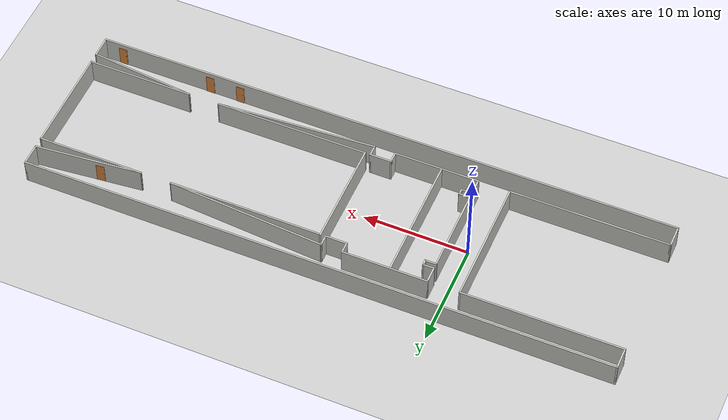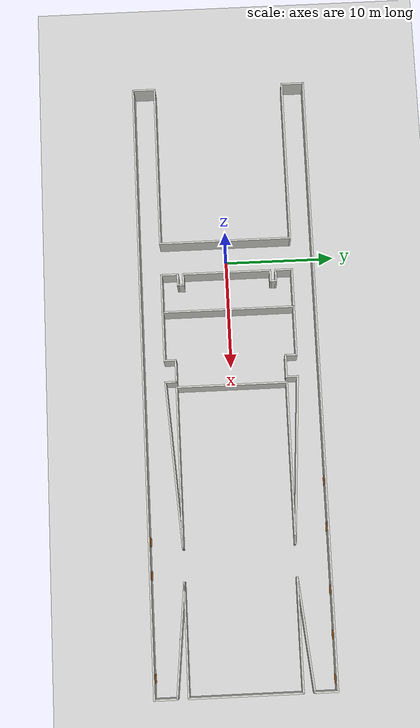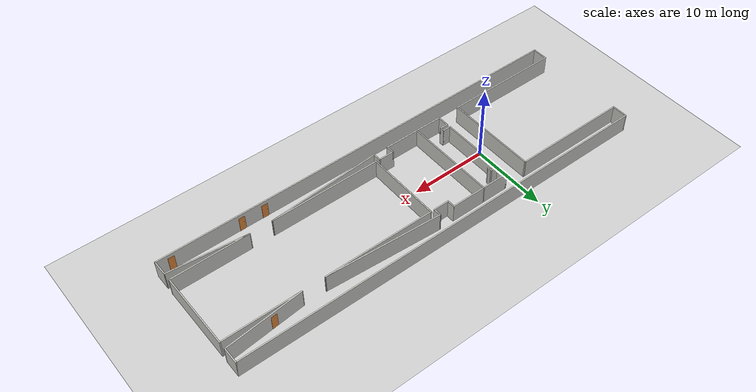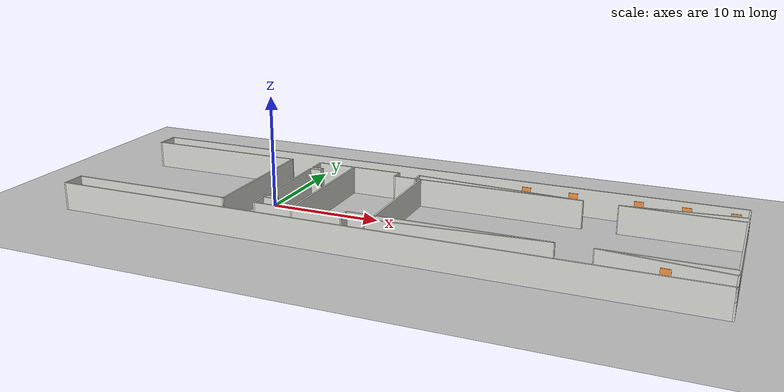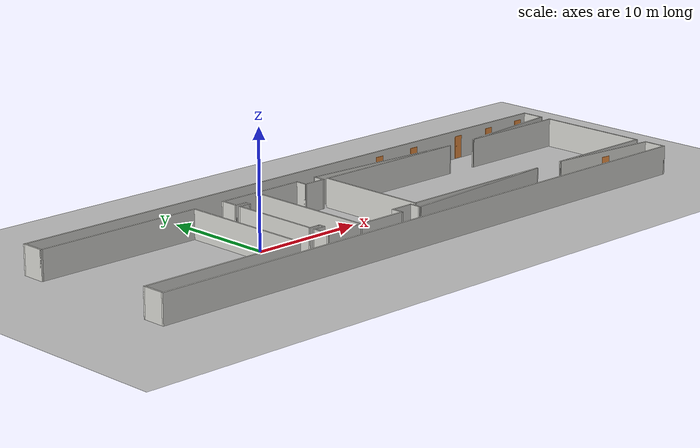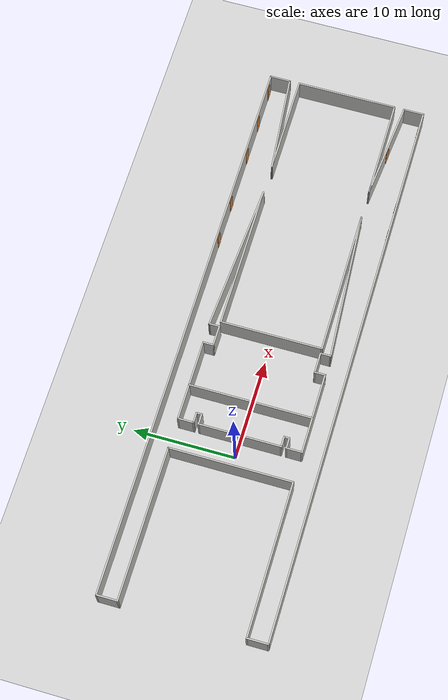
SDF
<sdf version="1.6">
 <world name="default">
  <model name="ground_plane">
   <static>1</static>
   <link name="link">
    <collision name="collision">
     <geometry><plane><normal>0 0 1</normal><size>100 100</size></plane></geometry>
     <surface>
      <contact><collide_bitmask>65535</collide_bitmask></contact>
      <friction><ode><mu>100</mu><mu2>50</mu2></ode></friction>
     </surface>
    </collision>
    <visual name="visual">
     <cast_shadows>0</cast_shadows>
     <geometry><plane><normal>0 0 1</normal><size>100 100</size></plane></geometry>
     <material>
      <script><uri>file://media/materials/scripts/gazebo.material</uri><name>Gazebo/Grey</name></script>
     </material>
    </visual>
   </link>
  </model>
  <model name="NURI_3rd">
   <pose>11.5035 0 0 0 -0 0</pose>
   <link name="Wall_0">
    <collision name="Wall_0_Collision">
     <geometry><box><size>56.15 0.15 2.5</size></box></geometry>
     <pose>0 0 1.25 0 -0 0</pose>
    </collision>
    <visual name="Wall_0_Visual">
     <pose>0 0 1.25 0 -0 0</pose>
     <geometry><box><size>56.15 0.15 2.5</size></box></geometry>
     <material>
      <script><uri>file://media/materials/scripts/gazebo.material</uri><name>Gazebo/CeilingTiled</name></script>
      <ambient>1 1 1 1</ambient>
     </material>
     <meta><layer>0</layer></meta>
    </visual>
    <pose>-0.003546 -8 0 0 -0 0</pose>
   </link>
   <link name="Wall_10">
    <collision name="Wall_10_Collision">
     <geometry><box><size>2.15 0.15 2.5</size></box></geometry>
     <pose>0 0 1.25 0 -0 0</pose>
    </collision>
    <visual name="Wall_10_Visual">
     <pose>0 0 1.25 0 -0 0</pose>
     <geometry><box><size>2.15 0.15 2.5</size></box></geometry>
     <material>
      <script><uri>file://media/materials/scripts/gazebo.material</uri><name>Gazebo/CeilingTiled</name></script>
      <ambient>1 1 1 1</ambient>
     </material>
     <meta><layer>0</layer></meta>
    </visual>
    <pose>-28.0035 7 0 0 -0 1.5708</pose>
   </link>
   <link name="Wall_12">
    <collision name="Wall_12_Collision">
     <geometry><box><size>56.15 0.15 2.5</size></box></geometry>
     <pose>0 0 1.25 0 -0 0</pose>
    </collision>
    <visual name="Wall_12_Visual">
     <pose>0 0 1.25 0 -0 0</pose>
     <geometry><box><size>56.15 0.15 2.5</size></box></geometry>
     <material>
      <script><uri>file://media/materials/scripts/gazebo.material</uri><name>Gazebo/CeilingTiled</name></script>
      <ambient>1 1 1 1</ambient>
     </material>
     <meta><layer>0</layer></meta>
    </visual>
    <pose>-0.003546 8 0 0 -0 0</pose>
   </link>
   <link name="Wall_14">
    <collision name="Wall_14_Collision">
     <geometry><box><size>8.15 0.15 2.5</size></box></geometry>
     <pose>0 0 1.25 0 -0 0</pose>
    </collision>
    <visual name="Wall_14_Visual">
     <pose>0 0 1.25 0 -0 0</pose>
     <geometry><box><size>8.15 0.15 2.5</size></box></geometry>
     <material>
      <script><uri>file://media/materials/scripts/gazebo.material</uri><name>Gazebo/CeilingTiled</name></script>
      <ambient>1 1 1 1</ambient>
     </material>
     <meta><layer>0</layer></meta>
    </visual>
    <pose>-6.00355 6 0 0 -0 0</pose>
   </link>
   <link name="Wall_16">
    <collision name="Wall_16_Collision">
     <geometry><box><size>1.65 0.15 2.5</size></box></geometry>
     <pose>0 0 1.25 0 -0 0</pose>
    </collision>
    <visual name="Wall_16_Visual">
     <pose>0 0 1.25 0 -0 0</pose>
     <geometry><box><size>1.65 0.15 2.5</size></box></geometry>
     <material>
      <script><uri>file://media/materials/scripts/gazebo.material</uri><name>Gazebo/CeilingTiled</name></script>
      <ambient>1 1 1 1</ambient>
     </material>
     <meta><layer>0</layer></meta>
    </visual>
    <pose>-10.0035 5.25 0 0 -0 -1.5708</pose>
   </link>
   <link name="Wall_18">
    <collision name="Wall_18_Collision">
     <geometry><box><size>1.15 0.15 2.5</size></box></geometry>
     <pose>0 0 1.25 0 -0 0</pose>
    </collision>
    <visual name="Wall_18_Visual">
     <pose>0 0 1.25 0 -0 0</pose>
     <geometry><box><size>1.15 0.15 2.5</size></box></geometry>
     <material>
      <script><uri>file://media/materials/scripts/gazebo.material</uri><name>Gazebo/CeilingTiled</name></script>
      <ambient>1 1 1 1</ambient>
     </material>
     <meta><layer>0</layer></meta>
    </visual>
    <pose>-9.50355 4.5 0 0 -0 0</pose>
   </link>
   <link name="Wall_2">
    <collision name="Wall_2_Collision">
     <geometry><box><size>2.15 0.15 2.5</size></box></geometry>
     <pose>0 0 1.25 0 -0 0</pose>
    </collision>
    <visual name="Wall_2_Visual">
     <pose>0 0 1.25 0 -0 0</pose>
     <geometry><box><size>2.15 0.15 2.5</size></box></geometry>
     <material>
      <script><uri>file://media/materials/scripts/gazebo.material</uri><name>Gazebo/CeilingTiled</name></script>
      <ambient>1 1 1 1</ambient>
     </material>
     <meta><layer>0</layer></meta>
    </visual>
    <pose>-28.0035 -7 0 0 -0 -1.5708</pose>
   </link>
   <link name="Wall_20">
    <collision name="Wall_20_Collision">
     <geometry><box><size>0.65 0.15 2.5</size></box></geometry>
     <pose>0 0 1.25 0 -0 0</pose>
    </collision>
    <visual name="Wall_20_Visual">
     <pose>0 0 1.25 0 -0 0</pose>
     <geometry><box><size>0.65 0.15 2.5</size></box></geometry>
     <material>
      <script><uri>file://media/materials/scripts/gazebo.material</uri><name>Gazebo/CeilingTiled</name></script>
      <ambient>1 1 1 1</ambient>
     </material>
     <meta><layer>0</layer></meta>
    </visual>
    <pose>-9.00355 4.25 0 0 -0 -1.5708</pose>
   </link>
   <link name="Wall_22">
    <collision name="Wall_22_Collision">
     <geometry><box><size>1.15 0.15 2.5</size></box></geometry>
     <pose>0 0 1.25 0 -0 0</pose>
    </collision>
    <visual name="Wall_22_Visual">
     <pose>0 0 1.25 0 -0 0</pose>
     <geometry><box><size>1.15 0.15 2.5</size></box></geometry>
     <material>
      <script><uri>file://media/materials/scripts/gazebo.material</uri><name>Gazebo/CeilingTiled</name></script>
      <ambient>1 1 1 1</ambient>
     </material>
     <meta><layer>0</layer></meta>
    </visual>
    <pose>-9.50355 4 0 0 -0 3.14159</pose>
   </link>
   <link name="Wall_24">
    <collision name="Wall_24_Collision">
     <geometry><box><size>8.15 0.15 2.5</size></box></geometry>
     <pose>0 0 1.25 0 -0 0</pose>
    </collision>
    <visual name="Wall_24_Visual">
     <pose>0 0 1.25 0 -0 0</pose>
     <geometry><box><size>8.15 0.15 2.5</size></box></geometry>
     <material>
      <script><uri>file://media/materials/scripts/gazebo.material</uri><name>Gazebo/CeilingTiled</name></script>
      <ambient>1 1 1 1</ambient>
     </material>
     <meta><layer>0</layer></meta>
    </visual>
    <pose>-10.0035 0 0 0 -0 -1.5708</pose>
   </link>
   <link name="Wall_26">
    <collision name="Wall_26_Collision">
     <geometry><box><size>1.15 0.15 2.5</size></box></geometry>
     <pose>0 0 1.25 0 -0 0</pose>
    </collision>
    <visual name="Wall_26_Visual">
     <pose>0 0 1.25 0 -0 0</pose>
     <geometry><box><size>1.15 0.15 2.5</size></box></geometry>
     <material>
      <script><uri>file://media/materials/scripts/gazebo.material</uri><name>Gazebo/CeilingTiled</name></script>
      <ambient>1 1 1 1</ambient>
     </material>
     <meta><layer>0</layer></meta>
    </visual>
    <pose>-9.50355 -4 0 0 -0 0</pose>
   </link>
   <link name="Wall_28">
    <collision name="Wall_28_Collision">
     <geometry><box><size>0.65 0.15 2.5</size></box></geometry>
     <pose>0 0 1.25 0 -0 0</pose>
    </collision>
    <visual name="Wall_28_Visual">
     <pose>0 0 1.25 0 -0 0</pose>
     <geometry><box><size>0.65 0.15 2.5</size></box></geometry>
     <material>
      <script><uri>file://media/materials/scripts/gazebo.material</uri><name>Gazebo/CeilingTiled</name></script>
      <ambient>1 1 1 1</ambient>
     </material>
     <meta><layer>0</layer></meta>
    </visual>
    <pose>-9.00355 -4.25 0 0 -0 -1.5708</pose>
   </link>
   <link name="Wall_30">
    <collision name="Wall_30_Collision">
     <geometry><box><size>1.15 0.15 2.5</size></box></geometry>
     <pose>0 0 1.25 0 -0 0</pose>
    </collision>
    <visual name="Wall_30_Visual">
     <pose>0 0 1.25 0 -0 0</pose>
     <geometry><box><size>1.15 0.15 2.5</size></box></geometry>
     <material>
      <script><uri>file://media/materials/scripts/gazebo.material</uri><name>Gazebo/CeilingTiled</name></script>
      <ambient>1 1 1 1</ambient>
     </material>
     <meta><layer>0</layer></meta>
    </visual>
    <pose>-9.50355 -4.5 0 0 -0 3.14159</pose>
   </link>
   <link name="Wall_32">
    <collision name="Wall_32_Collision">
     <geometry><box><size>1.65 0.15 2.5</size></box></geometry>
     <pose>0 0 1.25 0 -0 0</pose>
    </collision>
    <visual name="Wall_32_Visual">
     <pose>0 0 1.25 0 -0 0</pose>
     <geometry><box><size>1.65 0.15 2.5</size></box></geometry>
     <material>
      <script><uri>file://media/materials/scripts/gazebo.material</uri><name>Gazebo/CeilingTiled</name></script>
      <ambient>1 1 1 1</ambient>
     </material>
     <meta><layer>0</layer></meta>
    </visual>
    <pose>-10.0035 -5.25 0 0 -0 -1.5708</pose>
   </link>
   <link name="Wall_34">
    <collision name="Wall_34_Collision">
     <geometry><box><size>8.15 0.15 2.5</size></box></geometry>
     <pose>0 0 1.25 0 -0 0</pose>
    </collision>
    <visual name="Wall_34_Visual">
     <pose>0 0 1.25 0 -0 0</pose>
     <geometry><box><size>8.15 0.15 2.5</size></box></geometry>
     <material>
      <script><uri>file://media/materials/scripts/gazebo.material</uri><name>Gazebo/CeilingTiled</name></script>
      <ambient>1 1 1 1</ambient>
     </material>
     <meta><layer>0</layer></meta>
    </visual>
    <pose>-6.00355 -6 0 0 -0 0</pose>
   </link>
   <link name="Wall_36">
    <collision name="Wall_36_Collision">
     <geometry><box><size>1.15 0.15 2.5</size></box></geometry>
     <pose>0 0 1.25 0 -0 0</pose>
    </collision>
    <visual name="Wall_36_Visual">
     <pose>0 0 1.25 0 -0 0</pose>
     <geometry><box><size>1.15 0.15 2.5</size></box></geometry>
     <material>
      <script><uri>file://media/materials/scripts/gazebo.material</uri><name>Gazebo/CeilingTiled</name></script>
      <ambient>1 1 1 1</ambient>
     </material>
     <meta><layer>0</layer></meta>
    </visual>
    <pose>-2.00355 -5.5 0 0 -0 1.5708</pose>
   </link>
   <link name="Wall_38">
    <collision name="Wall_38_Collision">
     <geometry><box><size>2.15 0.15 2.5</size></box></geometry>
     <pose>0 0 1.25 0 -0 0</pose>
    </collision>
    <visual name="Wall_38_Visual">
     <pose>0 0 1.25 0 -0 0</pose>
     <geometry><box><size>2.15 0.15 2.5</size></box></geometry>
     <material>
      <script><uri>file://media/materials/scripts/gazebo.material</uri><name>Gazebo/CeilingTiled</name></script>
      <ambient>1 1 1 1</ambient>
     </material>
     <meta><layer>0</layer></meta>
    </visual>
    <pose>-1.00355 -5 0 0 -0 0</pose>
   </link>
   <link name="Wall_4">
    <collision name="Wall_4_Collision">
     <geometry><box><size>15.15 0.15 2.5</size></box></geometry>
     <pose>0 0 1.25 0 -0 0</pose>
    </collision>
    <visual name="Wall_4_Visual">
     <pose>0 0 1.25 0 -0 0</pose>
     <geometry><box><size>15.15 0.15 2.5</size></box></geometry>
     <material>
      <script><uri>file://media/materials/scripts/gazebo.material</uri><name>Gazebo/CeilingTiled</name></script>
      <ambient>1 1 1 1</ambient>
     </material>
     <meta><layer>0</layer></meta>
    </visual>
    <pose>-20.5035 -6 0 0 -0 0</pose>
   </link>
   <link name="Wall_40">
    <collision name="Wall_40_Collision">
     <geometry><box><size>1.15 0.15 2.5</size></box></geometry>
     <pose>0 0 1.25 0 -0 0</pose>
    </collision>
    <visual name="Wall_40_Visual">
     <pose>0 0 1.25 0 -0 0</pose>
     <geometry><box><size>1.15 0.15 2.5</size></box></geometry>
     <material>
      <script><uri>file://media/materials/scripts/gazebo.material</uri><name>Gazebo/CeilingTiled</name></script>
      <ambient>1 1 1 1</ambient>
     </material>
     <meta><layer>0</layer></meta>
    </visual>
    <pose>-0.003546 -5.5 0 0 -0 -1.5708</pose>
   </link>
   <link name="Wall_42">
    <collision name="Wall_42_Collision">
     <geometry><box><size>15.1833 0.15 2.5</size></box></geometry>
     <pose>0 0 1.25 0 -0 0</pose>
    </collision>
    <visual name="Wall_42_Visual">
     <pose>0 0 1.25 0 -0 0</pose>
     <geometry><box><size>15.1833 0.15 2.5</size></box></geometry>
     <material>
      <script><uri>file://media/materials/scripts/gazebo.material</uri><name>Gazebo/CeilingTiled</name></script>
      <ambient>1 1 1 1</ambient>
     </material>
     <meta><layer>0</layer></meta>
    </visual>
    <pose>7.49645 -5.5 0 0 -0 0.066568</pose>
   </link>
   <link name="Wall_44">
    <collision name="Wall_44_Collision">
     <geometry><box><size>14.65 0.15 2.5</size></box></geometry>
     <pose>0 0 1.25 0 -0 0</pose>
    </collision>
    <visual name="Wall_44_Visual">
     <pose>0 0 1.25 0 -0 0</pose>
     <geometry><box><size>14.65 0.15 2.5</size></box></geometry>
     <material>
      <script><uri>file://media/materials/scripts/gazebo.material</uri><name>Gazebo/CeilingTiled</name></script>
      <ambient>1 1 1 1</ambient>
     </material>
     <meta><layer>0</layer></meta>
    </visual>
    <pose>7.74645 -5 0 0 -0 3.14159</pose>
   </link>
   <link name="Wall_46">
    <collision name="Wall_46_Collision">
     <geometry><box><size>10.15 0.15 2.5</size></box></geometry>
     <pose>0 0 1.25 0 -0 0</pose>
    </collision>
    <visual name="Wall_46_Visual">
     <pose>0 0 1.25 0 -0 0</pose>
     <geometry><box><size>10.15 0.15 2.5</size></box></geometry>
     <material>
      <script><uri>file://media/materials/scripts/gazebo.material</uri><name>Gazebo/CeilingTiled</name></script>
      <ambient>1 1 1 1</ambient>
     </material>
     <meta><layer>0</layer></meta>
    </visual>
    <pose>0.496454 0 0 0 -0 1.5708</pose>
   </link>
   <link name="Wall_48">
    <collision name="Wall_48_Collision">
     <geometry><box><size>1.15 0.15 2.5</size></box></geometry>
     <pose>0 0 1.25 0 -0 0</pose>
    </collision>
    <visual name="Wall_48_Visual">
     <pose>0 0 1.25 0 -0 0</pose>
     <geometry><box><size>1.15 0.15 2.5</size></box></geometry>
     <material>
      <script><uri>file://media/materials/scripts/gazebo.material</uri><name>Gazebo/CeilingTiled</name></script>
      <ambient>1 1 1 1</ambient>
     </material>
     <meta><layer>0</layer></meta>
    </visual>
    <pose>-2.00355 5.5 0 0 -0 -1.5708</pose>
   </link>
   <link name="Wall_50">
    <collision name="Wall_50_Collision">
     <geometry><box><size>2.15 0.15 2.5</size></box></geometry>
     <pose>0 0 1.25 0 -0 0</pose>
    </collision>
    <visual name="Wall_50_Visual">
     <pose>0 0 1.25 0 -0 0</pose>
     <geometry><box><size>2.15 0.15 2.5</size></box></geometry>
     <material>
      <script><uri>file://media/materials/scripts/gazebo.material</uri><name>Gazebo/CeilingTiled</name></script>
      <ambient>1 1 1 1</ambient>
     </material>
     <meta><layer>0</layer></meta>
    </visual>
    <pose>-1.00355 5 0 0 -0 0</pose>
   </link>
   <link name="Wall_52">
    <collision name="Wall_52_Collision">
     <geometry><box><size>1.15 0.15 2.5</size></box></geometry>
     <pose>0 0 1.25 0 -0 0</pose>
    </collision>
    <visual name="Wall_52_Visual">
     <pose>0 0 1.25 0 -0 0</pose>
     <geometry><box><size>1.15 0.15 2.5</size></box></geometry>
     <material>
      <script><uri>file://media/materials/scripts/gazebo.material</uri><name>Gazebo/CeilingTiled</name></script>
      <ambient>1 1 1 1</ambient>
     </material>
     <meta><layer>0</layer></meta>
    </visual>
    <pose>-0.003546 5.5 0 0 -0 1.5708</pose>
   </link>
   <link name="Wall_54">
    <collision name="Wall_54_Collision">
     <geometry><box><size>15.1833 0.15 2.5</size></box></geometry>
     <pose>0 0 1.25 0 -0 0</pose>
    </collision>
    <visual name="Wall_54_Visual">
     <pose>0 0 1.25 0 -0 0</pose>
     <geometry><box><size>15.1833 0.15 2.5</size></box></geometry>
     <material>
      <script><uri>file://media/materials/scripts/gazebo.material</uri><name>Gazebo/CeilingTiled</name></script>
      <ambient>1 1 1 1</ambient>
     </material>
     <meta><layer>0</layer></meta>
    </visual>
    <pose>7.49645 5.5 0 0 -0 -0.066568</pose>
   </link>
   <link name="Wall_56">
    <collision name="Wall_56_Collision">
     <geometry><box><size>14.65 0.15 2.5</size></box></geometry>
     <pose>0 0 1.25 0 -0 0</pose>
    </collision>
    <visual name="Wall_56_Visual">
     <pose>0 0 1.25 0 -0 0</pose>
     <geometry><box><size>14.65 0.15 2.5</size></box></geometry>
     <material>
      <script><uri>file://media/materials/scripts/gazebo.material</uri><name>Gazebo/CeilingTiled</name></script>
      <ambient>1 1 1 1</ambient>
     </material>
     <meta><layer>0</layer></meta>
    </visual>
    <pose>7.74645 5 0 0 -0 0</pose>
   </link>
   <link name="Wall_58">
    <collision name="Wall_58_Collision">
     <geometry><box><size>10.1999 0.15 2.5</size></box></geometry>
     <pose>0 0 1.25 0 -0 0</pose>
    </collision>
    <visual name="Wall_58_Visual">
     <pose>0 0 1.25 0 -0 0</pose>
     <geometry><box><size>10.1999 0.15 2.5</size></box></geometry>
     <material>
      <script><uri>file://media/materials/scripts/gazebo.material</uri><name>Gazebo/CeilingTiled</name></script>
      <ambient>1 1 1 1</ambient>
     </material>
     <meta><layer>0</layer></meta>
    </visual>
    <pose>22.9965 5.5 0 0 -0 0.099669</pose>
   </link>
   <link name="Wall_6">
    <collision name="Wall_6_Collision">
     <geometry><box><size>12.15 0.15 2.5</size></box></geometry>
     <pose>0 0 1.25 0 -0 0</pose>
    </collision>
    <visual name="Wall_6_Visual">
     <pose>0 0 1.25 0 -0 0</pose>
     <geometry><box><size>12.15 0.15 2.5</size></box></geometry>
     <material>
      <script><uri>file://media/materials/scripts/gazebo.material</uri><name>Gazebo/CeilingTiled</name></script>
      <ambient>1 1 1 1</ambient>
     </material>
     <meta><layer>0</layer></meta>
    </visual>
    <pose>-13.0035 0 0 0 -0 1.5708</pose>
   </link>
   <link name="Wall_60">
    <collision name="Wall_60_Collision">
     <geometry><box><size>2.15 0.15 2.5</size></box></geometry>
     <pose>0 0 1.25 0 -0 0</pose>
    </collision>
    <visual name="Wall_60_Visual">
     <pose>0 0 1.25 0 -0 0</pose>
     <geometry><box><size>2.15 0.15 2.5</size></box></geometry>
     <material>
      <script><uri>file://media/materials/scripts/gazebo.material</uri><name>Gazebo/CeilingTiled</name></script>
      <ambient>1 1 1 1</ambient>
     </material>
     <meta><layer>0</layer></meta>
    </visual>
    <pose>27.9965 7 0 0 -0 -1.5708</pose>
   </link>
   <link name="Wall_62">
    <collision name="Wall_62_Collision">
     <geometry><box><size>2.15 0.15 2.5</size></box></geometry>
     <pose>0 0 1.25 0 -0 0</pose>
    </collision>
    <visual name="Wall_62_Visual">
     <pose>0 0 1.25 0 -0 0</pose>
     <geometry><box><size>2.15 0.15 2.5</size></box></geometry>
     <material>
      <script><uri>file://media/materials/scripts/gazebo.material</uri><name>Gazebo/CeilingTiled</name></script>
      <ambient>1 1 1 1</ambient>
     </material>
     <meta><layer>0</layer></meta>
    </visual>
    <pose>27.9965 -7 0 0 -0 1.5708</pose>
   </link>
   <link name="Wall_64">
    <collision name="Wall_64_Collision">
     <geometry><box><size>10.1999 0.15 2.5</size></box></geometry>
     <pose>0 0 1.25 0 -0 0</pose>
    </collision>
    <visual name="Wall_64_Visual">
     <pose>0 0 1.25 0 -0 0</pose>
     <geometry><box><size>10.1999 0.15 2.5</size></box></geometry>
     <material>
      <script><uri>file://media/materials/scripts/gazebo.material</uri><name>Gazebo/CeilingTiled</name></script>
      <ambient>1 1 1 1</ambient>
     </material>
     <meta><layer>0</layer></meta>
    </visual>
    <pose>22.9965 -5.5 0 0 -0 -0.099669</pose>
   </link>
   <link name="Wall_66">
    <collision name="Wall_66_Collision">
     <geometry><box><size>10.15 0.15 2.5</size></box></geometry>
     <pose>0 0 1.25 0 -0 0</pose>
    </collision>
    <visual name="Wall_66_Visual">
     <pose>0 0 1.25 0 -0 0</pose>
     <geometry><box><size>10.15 0.15 2.5</size></box></geometry>
     <material>
      <script><uri>file://media/materials/scripts/gazebo.material</uri><name>Gazebo/CeilingTiled</name></script>
      <ambient>1 1 1 1</ambient>
     </material>
     <meta><layer>0</layer></meta>
    </visual>
    <pose>22.9965 -5 0 0 -0 0</pose>
   </link>
   <link name="Wall_68">
    <collision name="Wall_68_Collision">
     <geometry><box><size>10.15 0.15 2.5</size></box></geometry>
     <pose>0 0 1.25 0 -0 0</pose>
    </collision>
    <visual name="Wall_68_Visual">
     <pose>0 0 1.25 0 -0 0</pose>
     <geometry><box><size>10.15 0.15 2.5</size></box></geometry>
     <material>
      <script><uri>file://media/materials/scripts/gazebo.material</uri><name>Gazebo/CeilingTiled</name></script>
      <ambient>1 1 1 1</ambient>
     </material>
     <meta><layer>0</layer></meta>
    </visual>
    <pose>22.9965 5 0 0 -0 0</pose>
   </link>
   <link name="Wall_70">
    <collision name="Wall_70_Collision">
     <geometry><box><size>10.15 0.15 2.5</size></box></geometry>
     <pose>0 0 1.25 0 -0 0</pose>
    </collision>
    <visual name="Wall_70_Visual">
     <pose>0 0 1.25 0 -0 0</pose>
     <geometry><box><size>10.15 0.15 2.5</size></box></geometry>
     <material>
      <script><uri>file://media/materials/scripts/gazebo.material</uri><name>Gazebo/CeilingTiled</name></script>
      <ambient>1 1 1 1</ambient>
     </material>
     <meta><layer>0</layer></meta>
    </visual>
    <pose>27.9965 0 0 0 -0 -1.5708</pose>
   </link>
   <link name="Wall_72">
    <collision name="Wall_72_Collision">
     <geometry><box><size>12.15 0.15 2.5</size></box></geometry>
     <pose>0 0 1.25 0 -0 0</pose>
    </collision>
    <visual name="Wall_72_Visual">
     <pose>0 0 1.25 0 -0 0</pose>
     <geometry><box><size>12.15 0.15 2.5</size></box></geometry>
     <material>
      <script><uri>file://media/materials/scripts/gazebo.material</uri><name>Gazebo/CeilingTiled</name></script>
      <ambient>1 1 1 1</ambient>
     </material>
     <meta><layer>0</layer></meta>
    </visual>
    <pose>-6.50355 0 0 0 -0 -1.5708</pose>
   </link>
   <link name="Wall_8">
    <collision name="Wall_8_Collision">
     <geometry><box><size>15.15 0.15 2.5</size></box></geometry>
     <pose>0 0 1.25 0 -0 0</pose>
    </collision>
    <visual name="Wall_8_Visual">
     <pose>0 0 1.25 0 -0 0</pose>
     <geometry><box><size>15.15 0.15 2.5</size></box></geometry>
     <material>
      <script><uri>file://media/materials/scripts/gazebo.material</uri><name>Gazebo/CeilingTiled</name></script>
      <ambient>1 1 1 1</ambient>
     </material>
     <meta><layer>0</layer></meta>
    </visual>
    <pose>-20.5035 6 0 0 -0 3.14159</pose>
   </link>
   <static>1</static>
  </model>
  <model name="door_stand_3">
   <model name="door">
    <link name="link_0">
     <inertial>
      <mass>1</mass>
      <inertia>
       <ixx>0.166667</ixx>
       <ixy>0</ixy>
       <ixz>0</ixz>
       <iyy>0.166667</iyy>
       <iyz>0</iyz>
       <izz>0.166667</izz>
      </inertia>
     </inertial>
     <visual name="visual">
      <geometry>
       <mesh><uri>/home/msjun-xavier/Downloads/door_C.obj</uri><scale>0.002 0.002 0.001</scale></mesh>
      </geometry>
      <material>
       <lighting>1</lighting>
       <script><uri>file://media/materials/scripts/gazebo.material</uri><name>Gazebo/Grey</name></script>
       <shader type="vertex"><normal_map>__default__</normal_map></shader>
       <ambient>0.875 0.533 0.239 1</ambient>
       <diffuse>0.7 0.7 0.7 1</diffuse>
       <specular>0.01 0.01 0.01 1</specular>
       <emissive>0 0 0 1</emissive>
      </material>
     </visual>
     <collision name="collision">
      <geometry>
       <mesh><uri>/home/msjun-xavier/Downloads/door_C.obj</uri><scale>0.002 0.002 0.001</scale></mesh>
      </geometry>
      <surface>
       <friction>
        <ode><mu>1</mu><mu2>1</mu2><fdir1>0 0 0</fdir1><slip1>0</slip1><slip2>0</slip2></ode>
        <torsional>
         <coefficient>1</coefficient>
         <patch_radius>0</patch_radius>
         <surface_radius>0</surface_radius>
         <use_patch_radius>1</use_patch_radius>
         <ode><slip>0</slip></ode>
        </torsional>
       </friction>
       <bounce><restitution_coefficient>0</restitution_coefficient><threshold>1e+06</threshold></bounce>
       <contact>
        <collide_without_contact>0</collide_without_contact>
        <collide_without_contact_bitmask>1</collide_without_contact_bitmask>
        <collide_bitmask>1</collide_bitmask>
        <ode>
         <soft_cfm>0</soft_cfm>
         <soft_erp>0.2</soft_erp>
         <kp>1e+13</kp>
         <kd>1</kd>
         <max_vel>0.01</max_vel>
         <min_depth>0</min_depth>
        </ode>
        <bullet>
         <split_impulse>1</split_impulse>
         <split_impulse_penetration_threshold>-0.01</split_impulse_penetration_threshold>
         <soft_cfm>0</soft_cfm>
         <soft_erp>0.2</soft_erp>
         <kp>1e+13</kp>
         <kd>1</kd>
        </bullet>
       </contact>
      </surface>
     </collision>
    </link>
    <static>1</static>
    <pose>1e-06 5e-06 0 3.09892 1.53609 -1.61633</pose>
   </model>
   <static>0</static>
   <pose>25.6173 -8 1.08 0 -0 0</pose>
  </model>
  <model name="door_stand_4">
   <model name="door">
    <link name="link_0">
     <inertial>
      <mass>1</mass>
      <inertia>
       <ixx>0.166667</ixx>
       <ixy>0</ixy>
       <ixz>0</ixz>
       <iyy>0.166667</iyy>
       <iyz>0</iyz>
       <izz>0.166667</izz>
      </inertia>
     </inertial>
     <visual name="visual">
      <geometry>
       <mesh><uri>/home/msjun-xavier/Downloads/door_C.obj</uri><scale>0.002 0.002 0.001</scale></mesh>
      </geometry>
      <material>
       <lighting>1</lighting>
       <script><uri>file://media/materials/scripts/gazebo.material</uri><name>Gazebo/Grey</name></script>
       <shader type="vertex"><normal_map>__default__</normal_map></shader>
       <ambient>0.875 0.533 0.239 1</ambient>
       <diffuse>0.7 0.7 0.7 1</diffuse>
       <specular>0.01 0.01 0.01 1</specular>
       <emissive>0 0 0 1</emissive>
      </material>
     </visual>
     <collision name="collision">
      <geometry>
       <mesh><uri>/home/msjun-xavier/Downloads/door_C.obj</uri><scale>0.002 0.002 0.001</scale></mesh>
      </geometry>
      <surface>
       <friction>
        <ode><mu>1</mu><mu2>1</mu2><fdir1>0 0 0</fdir1><slip1>0</slip1><slip2>0</slip2></ode>
        <torsional>
         <coefficient>1</coefficient>
         <patch_radius>0</patch_radius>
         <surface_radius>0</surface_radius>
         <use_patch_radius>1</use_patch_radius>
         <ode><slip>0</slip></ode>
        </torsional>
       </friction>
       <bounce><restitution_coefficient>0</restitution_coefficient><threshold>1e+06</threshold></bounce>
       <contact>
        <collide_without_contact>0</collide_without_contact>
        <collide_without_contact_bitmask>1</collide_without_contact_bitmask>
        <collide_bitmask>1</collide_bitmask>
        <ode>
         <soft_cfm>0</soft_cfm>
         <soft_erp>0.2</soft_erp>
         <kp>1e+13</kp>
         <kd>1</kd>
         <max_vel>0.01</max_vel>
         <min_depth>0</min_depth>
        </ode>
        <bullet>
         <split_impulse>1</split_impulse>
         <split_impulse_penetration_threshold>-0.01</split_impulse_penetration_threshold>
         <soft_cfm>0</soft_cfm>
         <soft_erp>0.2</soft_erp>
         <kp>1e+13</kp>
         <kd>1</kd>
        </bullet>
       </contact>
      </surface>
     </collision>
    </link>
    <static>1</static>
    <pose>1e-06 5e-06 0 3.09892 1.53609 -1.61633</pose>
   </model>
   <static>0</static>
   <pose>28.6473 -8 1.08 0 -0 0</pose>
  </model>
  <model name="door_stand_5">
   <model name="door">
    <link name="link_0">
     <inertial>
      <mass>1</mass>
      <inertia>
       <ixx>0.166667</ixx>
       <ixy>0</ixy>
       <ixz>0</ixz>
       <iyy>0.166667</iyy>
       <iyz>0</iyz>
       <izz>0.166667</izz>
      </inertia>
     </inertial>
     <visual name="visual">
      <geometry>
       <mesh><uri>/home/msjun-xavier/Downloads/door_C.obj</uri><scale>0.002 0.002 0.001</scale></mesh>
      </geometry>
      <material>
       <lighting>1</lighting>
       <script><uri>file://media/materials/scripts/gazebo.material</uri><name>Gazebo/Grey</name></script>
       <shader type="vertex"><normal_map>__default__</normal_map></shader>
       <ambient>0.875 0.533 0.239 1</ambient>
       <diffuse>0.7 0.7 0.7 1</diffuse>
       <specular>0.01 0.01 0.01 1</specular>
       <emissive>0 0 0 1</emissive>
      </material>
     </visual>
     <collision name="collision">
      <geometry>
       <mesh><uri>/home/msjun-xavier/Downloads/door_C.obj</uri><scale>0.002 0.002 0.001</scale></mesh>
      </geometry>
      <surface>
       <friction>
        <ode><mu>1</mu><mu2>1</mu2><fdir1>0 0 0</fdir1><slip1>0</slip1><slip2>0</slip2></ode>
        <torsional>
         <coefficient>1</coefficient>
         <patch_radius>0</patch_radius>
         <surface_radius>0</surface_radius>
         <use_patch_radius>1</use_patch_radius>
         <ode><slip>0</slip></ode>
        </torsional>
       </friction>
       <bounce><restitution_coefficient>0</restitution_coefficient><threshold>1e+06</threshold></bounce>
       <contact>
        <collide_without_contact>0</collide_without_contact>
        <collide_without_contact_bitmask>1</collide_without_contact_bitmask>
        <collide_bitmask>1</collide_bitmask>
        <ode>
         <soft_cfm>0</soft_cfm>
         <soft_erp>0.2</soft_erp>
         <kp>1e+13</kp>
         <kd>1</kd>
         <max_vel>0.01</max_vel>
         <min_depth>0</min_depth>
        </ode>
        <bullet>
         <split_impulse>1</split_impulse>
         <split_impulse_penetration_threshold>-0.01</split_impulse_penetration_threshold>
         <soft_cfm>0</soft_cfm>
         <soft_erp>0.2</soft_erp>
         <kp>1e+13</kp>
         <kd>1</kd>
        </bullet>
       </contact>
      </surface>
     </collision>
    </link>
    <static>1</static>
    <pose>1e-06 5e-06 0 3.09892 1.53609 -1.61633</pose>
   </model>
   <static>0</static>
   <pose>37.6167 -8 1.08 0 -0 0</pose>
  </model>
  <model name="door_stand_6">
   <model name="door">
    <link name="link_0">
     <inertial>
      <mass>1</mass>
      <inertia>
       <ixx>0.166667</ixx>
       <ixy>0</ixy>
       <ixz>0</ixz>
       <iyy>0.166667</iyy>
       <iyz>0</iyz>
       <izz>0.166667</izz>
      </inertia>
     </inertial>
     <visual name="visual">
      <geometry>
       <mesh><uri>/home/msjun-xavier/Downloads/door_C.obj</uri><scale>0.002 0.002 0.001</scale></mesh>
      </geometry>
      <material>
       <lighting>1</lighting>
       <script><uri>file://media/materials/scripts/gazebo.material</uri><name>Gazebo/Grey</name></script>
       <shader type="vertex"><normal_map>__default__</normal_map></shader>
       <ambient>0.875 0.533 0.239 1</ambient>
       <diffuse>0.7 0.7 0.7 1</diffuse>
       <specular>0.01 0.01 0.01 1</specular>
       <emissive>0 0 0 1</emissive>
      </material>
     </visual>
     <collision name="collision">
      <geometry>
       <mesh><uri>/home/msjun-xavier/Downloads/door_C.obj</uri><scale>0.002 0.002 0.001</scale></mesh>
      </geometry>
      <surface>
       <friction>
        <ode><mu>1</mu><mu2>1</mu2><fdir1>0 0 0</fdir1><slip1>0</slip1><slip2>0</slip2></ode>
        <torsional>
         <coefficient>1</coefficient>
         <patch_radius>0</patch_radius>
         <surface_radius>0</surface_radius>
         <use_patch_radius>1</use_patch_radius>
         <ode><slip>0</slip></ode>
        </torsional>
       </friction>
       <bounce><restitution_coefficient>0</restitution_coefficient><threshold>1e+06</threshold></bounce>
       <contact>
        <collide_without_contact>0</collide_without_contact>
        <collide_without_contact_bitmask>1</collide_without_contact_bitmask>
        <collide_bitmask>1</collide_bitmask>
        <ode>
         <soft_cfm>0</soft_cfm>
         <soft_erp>0.2</soft_erp>
         <kp>1e+13</kp>
         <kd>1</kd>
         <max_vel>0.01</max_vel>
         <min_depth>0</min_depth>
        </ode>
        <bullet>
         <split_impulse>1</split_impulse>
         <split_impulse_penetration_threshold>-0.01</split_impulse_penetration_threshold>
         <soft_cfm>0</soft_cfm>
         <soft_erp>0.2</soft_erp>
         <kp>1e+13</kp>
         <kd>1</kd>
        </bullet>
       </contact>
      </surface>
     </collision>
    </link>
    <static>1</static>
    <pose>1e-06 5e-06 0 3.09892 1.53609 -1.61633</pose>
   </model>
   <static>0</static>
   <pose>33.2654 5.34285 1.08 0 -0 0.106649</pose>
  </model>
  <model name="door_stand_9">
   <model name="door">
    <link name="link_0">
     <inertial>
      <mass>1</mass>
      <inertia>
       <ixx>0.166667</ixx>
       <ixy>0</ixy>
       <ixz>0</ixz>
       <iyy>0.166667</iyy>
       <iyz>0</iyz>
       <izz>0.166667</izz>
      </inertia>
     </inertial>
     <visual name="visual">
      <geometry>
       <mesh><uri>/home/msjun-xavier/Downloads/door_C.obj</uri><scale>0.002 0.002 0.001</scale></mesh>
      </geometry>
      <material>
       <lighting>1</lighting>
       <script><uri>file://media/materials/scripts/gazebo.material</uri><name>Gazebo/Grey</name></script>
       <shader type="vertex"><normal_map>__default__</normal_map></shader>
       <ambient>0.875 0.533 0.239 1</ambient>
       <diffuse>0.7 0.7 0.7 1</diffuse>
       <specular>0.01 0.01 0.01 1</specular>
       <emissive>0 0 0 1</emissive>
      </material>
     </visual>
     <collision name="collision">
      <geometry>
       <mesh><uri>/home/msjun-xavier/Downloads/door_C.obj</uri><scale>0.002 0.002 0.001</scale></mesh>
      </geometry>
      <surface>
       <friction>
        <ode><mu>1</mu><mu2>1</mu2><fdir1>0 0 0</fdir1><slip1>0</slip1><slip2>0</slip2></ode>
        <torsional>
         <coefficient>1</coefficient>
         <patch_radius>0</patch_radius>
         <surface_radius>0</surface_radius>
         <use_patch_radius>1</use_patch_radius>
         <ode><slip>0</slip></ode>
        </torsional>
       </friction>
       <bounce><restitution_coefficient>0</restitution_coefficient><threshold>1e+06</threshold></bounce>
       <contact>
        <collide_without_contact>0</collide_without_contact>
        <collide_without_contact_bitmask>1</collide_without_contact_bitmask>
        <collide_bitmask>1</collide_bitmask>
        <ode>
         <soft_cfm>0</soft_cfm>
         <soft_erp>0.2</soft_erp>
         <kp>1e+13</kp>
         <kd>1</kd>
         <max_vel>0.01</max_vel>
         <min_depth>0</min_depth>
        </ode>
        <bullet>
         <split_impulse>1</split_impulse>
         <split_impulse_penetration_threshold>-0.01</split_impulse_penetration_threshold>
         <soft_cfm>0</soft_cfm>
         <soft_erp>0.2</soft_erp>
         <kp>1e+13</kp>
         <kd>1</kd>
        </bullet>
       </contact>
      </surface>
     </collision>
    </link>
    <static>1</static>
    <pose>1e-06 5e-06 0 3.09892 1.53609 -1.61633</pose>
   </model>
   <static>0</static>
   <pose>34.5353 -5.70023 1.08 0 0 -0.104588</pose>
  </model>
  <model name="door_stand_10">
   <model name="door">
    <link name="link_0">
     <inertial>
      <mass>1</mass>
      <inertia>
       <ixx>0.166667</ixx>
       <ixy>0</ixy>
       <ixz>0</ixz>
       <iyy>0.166667</iyy>
       <iyz>0</iyz>
       <izz>0.166667</izz>
      </inertia>
     </inertial>
     <visual name="visual">
      <geometry>
       <mesh><uri>/home/msjun-xavier/Downloads/door_C.obj</uri><scale>0.002 0.002 0.001</scale></mesh>
      </geometry>
      <material>
       <lighting>1</lighting>
       <script><uri>file://media/materials/scripts/gazebo.material</uri><name>Gazebo/Grey</name></script>
       <shader type="vertex"><normal_map>__default__</normal_map></shader>
       <ambient>0.875 0.533 0.239 1</ambient>
       <diffuse>0.7 0.7 0.7 1</diffuse>
       <specular>0.01 0.01 0.01 1</specular>
       <emissive>0 0 0 1</emissive>
      </material>
     </visual>
     <collision name="collision">
      <geometry>
       <mesh><uri>/home/msjun-xavier/Downloads/door_C.obj</uri><scale>0.002 0.002 0.001</scale></mesh>
      </geometry>
      <surface>
       <friction>
        <ode><mu>1</mu><mu2>1</mu2><fdir1>0 0 0</fdir1><slip1>0</slip1><slip2>0</slip2></ode>
        <torsional>
         <coefficient>1</coefficient>
         <patch_radius>0</patch_radius>
         <surface_radius>0</surface_radius>
         <use_patch_radius>1</use_patch_radius>
         <ode><slip>0</slip></ode>
        </torsional>
       </friction>
       <bounce><restitution_coefficient>0</restitution_coefficient><threshold>1e+06</threshold></bounce>
       <contact>
        <collide_without_contact>0</collide_without_contact>
        <collide_without_contact_bitmask>1</collide_without_contact_bitmask>
        <collide_bitmask>1</collide_bitmask>
        <ode>
         <soft_cfm>0</soft_cfm>
         <soft_erp>0.2</soft_erp>
         <kp>1e+13</kp>
         <kd>1</kd>
         <max_vel>0.01</max_vel>
         <min_depth>0</min_depth>
        </ode>
        <bullet>
         <split_impulse>1</split_impulse>
         <split_impulse_penetration_threshold>-0.01</split_impulse_penetration_threshold>
         <soft_cfm>0</soft_cfm>
         <soft_erp>0.2</soft_erp>
         <kp>1e+13</kp>
         <kd>1</kd>
        </bullet>
       </contact>
      </surface>
     </collision>
    </link>
    <static>1</static>
    <pose>1e-06 5e-06 0 3.09892 1.53609 -1.61633</pose>
   </model>
   <static>0</static>
   <pose>38.3584 7.8 1.08 0 -0 0</pose>
  </model>
  <model name="door_stand_11">
   <model name="door">
    <link name="link_0">
     <inertial>
      <mass>1</mass>
      <inertia>
       <ixx>0.166667</ixx>
       <ixy>0</ixy>
       <ixz>0</ixz>
       <iyy>0.166667</iyy>
       <iyz>0</iyz>
       <izz>0.166667</izz>
      </inertia>
     </inertial>
     <visual name="visual">
      <geometry>
       <mesh><uri>/home/msjun-xavier/Downloads/door_C.obj</uri><scale>0.002 0.002 0.001</scale></mesh>
      </geometry>
      <material>
       <lighting>1</lighting>
       <script><uri>file://media/materials/scripts/gazebo.material</uri><name>Gazebo/Grey</name></script>
       <shader type="vertex"><normal_map>__default__</normal_map></shader>
       <ambient>0.875 0.533 0.239 1</ambient>
       <diffuse>0.7 0.7 0.7 1</diffuse>
       <specular>0.01 0.01 0.01 1</specular>
       <emissive>0 0 0 1</emissive>
      </material>
     </visual>
     <collision name="collision">
      <geometry>
       <mesh><uri>/home/msjun-xavier/Downloads/door_C.obj</uri><scale>0.002 0.002 0.001</scale></mesh>
      </geometry>
      <surface>
       <friction>
        <ode><mu>1</mu><mu2>1</mu2><fdir1>0 0 0</fdir1><slip1>0</slip1><slip2>0</slip2></ode>
        <torsional>
         <coefficient>1</coefficient>
         <patch_radius>0</patch_radius>
         <surface_radius>0</surface_radius>
         <use_patch_radius>1</use_patch_radius>
         <ode><slip>0</slip></ode>
        </torsional>
       </friction>
       <bounce><restitution_coefficient>0</restitution_coefficient><threshold>1e+06</threshold></bounce>
       <contact>
        <collide_without_contact>0</collide_without_contact>
        <collide_without_contact_bitmask>1</collide_without_contact_bitmask>
        <collide_bitmask>1</collide_bitmask>
        <ode>
         <soft_cfm>0</soft_cfm>
         <soft_erp>0.2</soft_erp>
         <kp>1e+13</kp>
         <kd>1</kd>
         <max_vel>0.01</max_vel>
         <min_depth>0</min_depth>
        </ode>
        <bullet>
         <split_impulse>1</split_impulse>
         <split_impulse_penetration_threshold>-0.01</split_impulse_penetration_threshold>
         <soft_cfm>0</soft_cfm>
         <soft_erp>0.2</soft_erp>
         <kp>1e+13</kp>
         <kd>1</kd>
        </bullet>
       </contact>
      </surface>
     </collision>
    </link>
    <static>1</static>
    <pose>1e-06 5e-06 0 3.09892 1.53609 -1.61633</pose>
   </model>
   <static>0</static>
   <pose>34.5052 7.8 1.08 0 -0 0</pose>
  </model>
  <model name="door_stand_12">
   <model name="door">
    <link name="link_0">
     <inertial>
      <mass>1</mass>
      <inertia>
       <ixx>0.166667</ixx>
       <ixy>0</ixy>
       <ixz>0</ixz>
       <iyy>0.166667</iyy>
       <iyz>0</iyz>
       <izz>0.166667</izz>
      </inertia>
     </inertial>
     <visual name="visual">
      <geometry>
       <mesh><uri>/home/msjun-xavier/Downloads/door_C.obj</uri><scale>0.002 0.002 0.001</scale></mesh>
      </geometry>
      <material>
       <lighting>1</lighting>
       <script><uri>file://media/materials/scripts/gazebo.material</uri><name>Gazebo/Grey</name></script>
       <shader type="vertex"><normal_map>__default__</normal_map></shader>
       <ambient>0.875 0.533 0.239 1</ambient>
       <diffuse>0.7 0.7 0.7 1</diffuse>
       <specular>0.01 0.01 0.01 1</specular>
       <emissive>0 0 0 1</emissive>
      </material>
     </visual>
     <collision name="collision">
      <geometry>
       <mesh><uri>/home/msjun-xavier/Downloads/door_C.obj</uri><scale>0.002 0.002 0.001</scale></mesh>
      </geometry>
      <surface>
       <friction>
        <ode><mu>1</mu><mu2>1</mu2><fdir1>0 0 0</fdir1><slip1>0</slip1><slip2>0</slip2></ode>
        <torsional>
         <coefficient>1</coefficient>
         <patch_radius>0</patch_radius>
         <surface_radius>0</surface_radius>
         <use_patch_radius>1</use_patch_radius>
         <ode><slip>0</slip></ode>
        </torsional>
       </friction>
       <bounce><restitution_coefficient>0</restitution_coefficient><threshold>1e+06</threshold></bounce>
       <contact>
        <collide_without_contact>0</collide_without_contact>
        <collide_without_contact_bitmask>1</collide_without_contact_bitmask>
        <collide_bitmask>1</collide_bitmask>
        <ode>
         <soft_cfm>0</soft_cfm>
         <soft_erp>0.2</soft_erp>
         <kp>1e+13</kp>
         <kd>1</kd>
         <max_vel>0.01</max_vel>
         <min_depth>0</min_depth>
        </ode>
        <bullet>
         <split_impulse>1</split_impulse>
         <split_impulse_penetration_threshold>-0.01</split_impulse_penetration_threshold>
         <soft_cfm>0</soft_cfm>
         <soft_erp>0.2</soft_erp>
         <kp>1e+13</kp>
         <kd>1</kd>
        </bullet>
       </contact>
      </surface>
     </collision>
    </link>
    <static>1</static>
    <pose>1e-06 5e-06 0 3.09892 1.53609 -1.61633</pose>
   </model>
   <static>0</static>
   <pose>30.5792 7.8 1.08 0 -0 0</pose>
  </model>
  <model name="door_stand_13">
   <model name="door">
    <link name="link_0">
     <inertial>
      <mass>1</mass>
      <inertia>
       <ixx>0.166667</ixx>
       <ixy>0</ixy>
       <ixz>0</ixz>
       <iyy>0.166667</iyy>
       <iyz>0</iyz>
       <izz>0.166667</izz>
      </inertia>
     </inertial>
     <visual name="visual">
      <geometry>
       <mesh><uri>/home/msjun-xavier/Downloads/door_C.obj</uri><scale>0.002 0.002 0.001</scale></mesh>
      </geometry>
      <material>
       <lighting>1</lighting>
       <script><uri>file://media/materials/scripts/gazebo.material</uri><name>Gazebo/Grey</name></script>
       <shader type="vertex"><normal_map>__default__</normal_map></shader>
       <ambient>0.875 0.533 0.239 1</ambient>
       <diffuse>0.7 0.7 0.7 1</diffuse>
       <specular>0.01 0.01 0.01 1</specular>
       <emissive>0 0 0 1</emissive>
      </material>
     </visual>
     <collision name="collision">
      <geometry>
       <mesh><uri>/home/msjun-xavier/Downloads/door_C.obj</uri><scale>0.002 0.002 0.001</scale></mesh>
      </geometry>
      <surface>
       <friction>
        <ode><mu>1</mu><mu2>1</mu2><fdir1>0 0 0</fdir1><slip1>0</slip1><slip2>0</slip2></ode>
        <torsional>
         <coefficient>1</coefficient>
         <patch_radius>0</patch_radius>
         <surface_radius>0</surface_radius>
         <use_patch_radius>1</use_patch_radius>
         <ode><slip>0</slip></ode>
        </torsional>
       </friction>
       <bounce><restitution_coefficient>0</restitution_coefficient><threshold>1e+06</threshold></bounce>
       <contact>
        <collide_without_contact>0</collide_without_contact>
        <collide_without_contact_bitmask>1</collide_without_contact_bitmask>
        <collide_bitmask>1</collide_bitmask>
        <ode>
         <soft_cfm>0</soft_cfm>
         <soft_erp>0.2</soft_erp>
         <kp>1e+13</kp>
         <kd>1</kd>
         <max_vel>0.01</max_vel>
         <min_depth>0</min_depth>
        </ode>
        <bullet>
         <split_impulse>1</split_impulse>
         <split_impulse_penetration_threshold>-0.01</split_impulse_penetration_threshold>
         <soft_cfm>0</soft_cfm>
         <soft_erp>0.2</soft_erp>
         <kp>1e+13</kp>
         <kd>1</kd>
        </bullet>
       </contact>
      </surface>
     </collision>
    </link>
    <static>1</static>
    <pose>1e-06 5e-06 0 3.09892 1.53609 -1.61633</pose>
   </model>
   <static>0</static>
   <pose>24.9825 7.8 1.08 0 -0 0</pose>
  </model>
  <model name="door_stand_14">
   <model name="door">
    <link name="link_0">
     <inertial>
      <mass>1</mass>
      <inertia>
       <ixx>0.166667</ixx>
       <ixy>0</ixy>
       <ixz>0</ixz>
       <iyy>0.166667</iyy>
       <iyz>0</iyz>
       <izz>0.166667</izz>
      </inertia>
     </inertial>
     <visual name="visual">
      <geometry>
       <mesh><uri>/home/msjun-xavier/Downloads/door_C.obj</uri><scale>0.002 0.002 0.001</scale></mesh>
      </geometry>
      <material>
       <lighting>1</lighting>
       <script><uri>file://media/materials/scripts/gazebo.material</uri><name>Gazebo/Grey</name></script>
       <shader type="vertex"><normal_map>__default__</normal_map></shader>
       <ambient>0.875 0.533 0.239 1</ambient>
       <diffuse>0.7 0.7 0.7 1</diffuse>
       <specular>0.01 0.01 0.01 1</specular>
       <emissive>0 0 0 1</emissive>
      </material>
     </visual>
     <collision name="collision">
      <geometry>
       <mesh><uri>/home/msjun-xavier/Downloads/door_C.obj</uri><scale>0.002 0.002 0.001</scale></mesh>
      </geometry>
      <surface>
       <friction>
        <ode><mu>1</mu><mu2>1</mu2><fdir1>0 0 0</fdir1><slip1>0</slip1><slip2>0</slip2></ode>
        <torsional>
         <coefficient>1</coefficient>
         <patch_radius>0</patch_radius>
         <surface_radius>0</surface_radius>
         <use_patch_radius>1</use_patch_radius>
         <ode><slip>0</slip></ode>
        </torsional>
       </friction>
       <bounce><restitution_coefficient>0</restitution_coefficient><threshold>1e+06</threshold></bounce>
       <contact>
        <collide_without_contact>0</collide_without_contact>
        <collide_without_contact_bitmask>1</collide_without_contact_bitmask>
        <collide_bitmask>1</collide_bitmask>
        <ode>
         <soft_cfm>0</soft_cfm>
         <soft_erp>0.2</soft_erp>
         <kp>1e+13</kp>
         <kd>1</kd>
         <max_vel>0.01</max_vel>
         <min_depth>0</min_depth>
        </ode>
        <bullet>
         <split_impulse>1</split_impulse>
         <split_impulse_penetration_threshold>-0.01</split_impulse_penetration_threshold>
         <soft_cfm>0</soft_cfm>
         <soft_erp>0.2</soft_erp>
         <kp>1e+13</kp>
         <kd>1</kd>
        </bullet>
       </contact>
      </surface>
     </collision>
    </link>
    <static>1</static>
    <pose>1e-06 5e-06 0 3.09892 1.53609 -1.61633</pose>
   </model>
   <static>0</static>
   <pose>20.8157 7.8 1.08 0 -0 0</pose>
  </model>
 </world>
</sdf>
